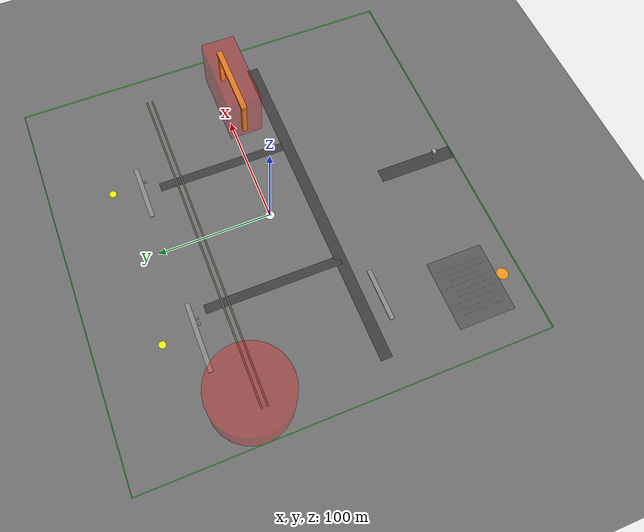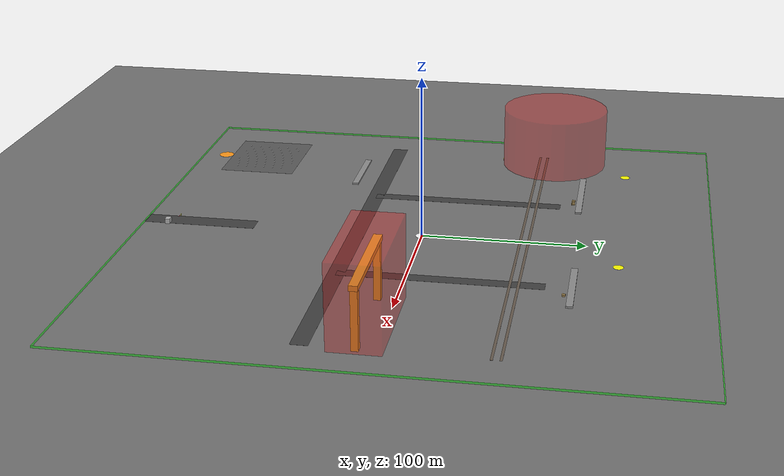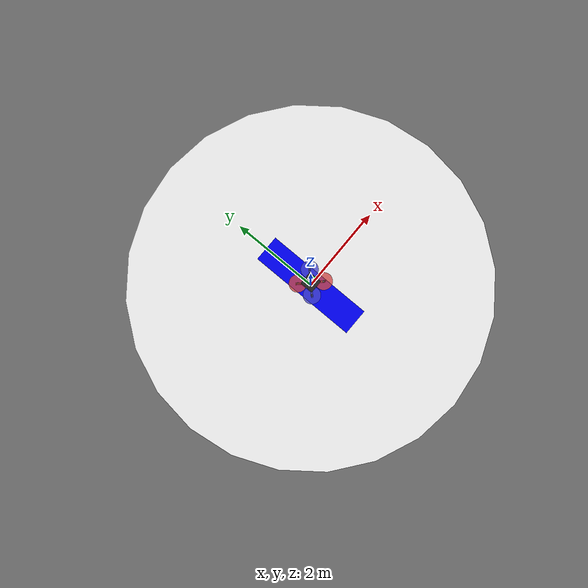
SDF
<sdf version="1.9">
 <world name="flyby_port_warehouse">
  <physics name="training_physics" type="ode">
   <max_step_size>0.001</max_step_size>
   <real_time_factor>1.0</real_time_factor>
   <real_time_update_rate>1000</real_time_update_rate>
   <ode>
    <solver><type>quick</type><iters>50</iters><sor>1.3</sor></solver>
    <constraints><cfm>0.0</cfm><erp>0.2</erp></constraints>
   </ode>
  </physics>
  <plugin filename="gz-sim-physics-system" name="gz::sim::systems::Physics"/>
  <plugin filename="gz-sim-sensors-system" name="gz::sim::systems::Sensors">
   <render_engine>ogre2</render_engine>
  </plugin>
  <plugin filename="gz-sim-scene-broadcaster-system" name="gz::sim::systems::SceneBroadcaster"/>
  <plugin filename="gz-sim-user-commands-system" name="gz::sim::systems::UserCommands"/>
  <plugin filename="gz-sim-imu-system" name="gz::sim::systems::Imu"/>
  <plugin filename="gz-sim-air-pressure-system" name="gz::sim::systems::AirPressure"/>
  <plugin filename="gz-sim-magnetometer-system" name="gz::sim::systems::Magnetometer"/>
  <plugin filename="gz-sim-navsat-system" name="gz::sim::systems::NavSat"/>
  <atmosphere type="adiabatic"><temperature>295.15</temperature><pressure>101325</pressure></atmosphere>
  <spherical_coordinates>
   <surface_model>EARTH_WGS84</surface_model>
   <world_frame_orientation>ENU</world_frame_orientation>
   <latitude_deg>33.7701</latitude_deg>
   <longitude_deg>-118.1937</longitude_deg>
   <elevation>5</elevation>
   <heading_deg>0</heading_deg>
  </spherical_coordinates>
  <light type="directional" name="sun">
   <pose>0 0 120 0 0 0</pose>
   <diffuse>0.7 0.7 0.7 1</diffuse>
   <specular>0.2 0.2 0.2 1</specular>
   <attenuation>
    <range>1000</range>
    <constant>0.9</constant>
    <linear>0.01</linear>
    <quadratic>0.001</quadratic>
   </attenuation>
   <direction>-0.4 0.3 -0.85</direction>
  </light>
  <light type="directional" name="ambient_fill">
   <cast_shadows>false</cast_shadows>
   <pose>0 0 120 0 0 0</pose>
   <diffuse>0.18 0.18 0.2 1</diffuse>
   <specular>0 0 0 1</specular>
   <direction>0 0 -1</direction>
  </light>
  <scene>
   <ambient>0.35 0.35 0.38 1</ambient>
   <background>0.65 0.68 0.75 1</background>
   <shadows>true</shadows>
  </scene>
  <model name="ground_plane">
   <static>true</static>
   <link name="link">
    <collision name="collision">
     <geometry><plane><normal>0 0 1</normal><size>450 450</size></plane></geometry>
     <surface><friction><ode><mu>100</mu><mu2>50</mu2></ode></friction></surface>
    </collision>
    <visual name="visual">
     <geometry><plane><normal>0 0 1</normal><size>450 450</size></plane></geometry>
     <material><ambient>0.4 0.4 0.4 1</ambient><diffuse>0.45 0.45 0.45 1</diffuse></material>
    </visual>
   </link>
  </model>
  <model name="geofence_north">
   <static>true</static>
   <pose>0 175 0.5 0 0 0</pose>
   <link name="link">
    <visual name="visual">
     <geometry><box><size>350 0.5 1</size></box></geometry>
     <material><ambient>0 1 0 0.5</ambient><diffuse>0 1 0 0.5</diffuse></material>
    </visual>
   </link>
  </model>
  <model name="geofence_south">
   <static>true</static>
   <pose>0 -175 0.5 0 0 0</pose>
   <link name="link">
    <visual name="visual">
     <geometry><box><size>350 0.5 1</size></box></geometry>
     <material><ambient>0 1 0 0.5</ambient><diffuse>0 1 0 0.5</diffuse></material>
    </visual>
   </link>
  </model>
  <model name="geofence_east">
   <static>true</static>
   <pose>175 0 0.5 0 0 0</pose>
   <link name="link">
    <visual name="visual">
     <geometry><box><size>0.5 350 1</size></box></geometry>
     <material><ambient>0 1 0 0.5</ambient><diffuse>0 1 0 0.5</diffuse></material>
    </visual>
   </link>
  </model>
  <model name="geofence_west">
   <static>true</static>
   <pose>-175 0 0.5 0 0 0</pose>
   <link name="link">
    <visual name="visual">
     <geometry><box><size>0.5 350 1</size></box></geometry>
     <material><ambient>0 1 0 0.5</ambient><diffuse>0 1 0 0.5</diffuse></material>
    </visual>
   </link>
  </model>
  <model name="main_entrance_road">
   <static>true</static>
   <pose>0 -140 0.02 0 0 0</pose>
   <link name="link">
    <visual name="visual">
     <geometry><box><size>12 70 0.04</size></box></geometry>
     <material><ambient>0.2 0.2 0.2 1</ambient><diffuse>0.25 0.25 0.25 1</diffuse></material>
    </visual>
   </link>
  </model>
  <model name="internal_road_ew">
   <static>true</static>
   <pose>0 -40 0.02 0 0 0</pose>
   <link name="link">
    <visual name="visual">
     <geometry><box><size>300 10 0.04</size></box></geometry>
     <material><ambient>0.2 0.2 0.2 1</ambient><diffuse>0.25 0.25 0.25 1</diffuse></material>
    </visual>
   </link>
  </model>
  <model name="internal_road_ns_1">
   <static>true</static>
   <pose>-60 20 0.02 0 0 0</pose>
   <link name="link">
    <visual name="visual">
     <geometry><box><size>8 120 0.04</size></box></geometry>
     <material><ambient>0.2 0.2 0.2 1</ambient><diffuse>0.25 0.25 0.25 1</diffuse></material>
    </visual>
   </link>
  </model>
  <model name="internal_road_ns_2">
   <static>true</static>
   <pose>60 20 0.02 0 0 0</pose>
   <link name="link">
    <visual name="visual">
     <geometry><box><size>8 120 0.04</size></box></geometry>
     <material><ambient>0.2 0.2 0.2 1</ambient><diffuse>0.25 0.25 0.25 1</diffuse></material>
    </visual>
   </link>
  </model>
  <model name="rail_track_1">
   <static>true</static>
   <pose>0 60 0.03 0 0 0</pose>
   <link name="link">
    <visual name="visual">
     <geometry><box><size>300 1.5 0.06</size></box></geometry>
     <material><ambient>0.3 0.25 0.2 1</ambient><diffuse>0.4 0.35 0.3 1</diffuse></material>
    </visual>
   </link>
  </model>
  <model name="rail_track_2">
   <static>true</static>
   <pose>0 65 0.03 0 0 0</pose>
   <link name="link">
    <visual name="visual">
     <geometry><box><size>300 1.5 0.06</size></box></geometry>
     <material><ambient>0.3 0.25 0.2 1</ambient><diffuse>0.4 0.35 0.3 1</diffuse></material>
    </visual>
   </link>
  </model>
  <model name="security_booth">
   <static>true</static>
   <pose>5 -160 1.5 0 0 0</pose>
   <link name="link">
    <collision name="collision"><geometry><box><size>4 3 3</size></box></geometry></collision>
    <visual name="visual">
     <geometry><box><size>4 3 3</size></box></geometry>
     <material><ambient>0.6 0.6 0.6 1</ambient><diffuse>0.7 0.7 0.7 1</diffuse></material>
    </visual>
   </link>
  </model>
  <model name="gate_barrier">
   <static>true</static>
   <pose>-5 -155 1 0 0 0</pose>
   <link name="link">
    <visual name="post">
     <geometry><cylinder><radius>0.1</radius><length>2</length></cylinder></geometry>
     <material><ambient>0.8 0.8 0 1</ambient><diffuse>0.9 0.9 0.1 1</diffuse></material>
    </visual>
    <visual name="arm">
     <pose>2.5 0 0.9 0 1.57 0</pose>
     <geometry><cylinder><radius>0.05</radius><length>5</length></cylinder></geometry>
     <material><ambient>1 0 0 1</ambient><diffuse>1 0.2 0.2 1</diffuse></material>
    </visual>
   </link>
  </model>
  <model name="parking_lot">
   <static>true</static>
   <pose>-120 -130 0.01 0 0 0</pose>
   <link name="link">
    <visual name="visual">
     <geometry><box><size>60 50 0.02</size></box></geometry>
     <material><ambient>0.3 0.3 0.3 1</ambient><diffuse>0.35 0.35 0.35 1</diffuse></material>
    </visual>
   </link>
  </model>
  <model name="parking_lines">
   <static>true</static>
   <pose>-120 -130 0.02 0 0 0</pose>
   <link name="link">
    <visual name="line1">
     <pose>-20 0 0 0 0 0</pose>
     <geometry><box><size>0.1 40 0.01</size></box></geometry>
     <material><ambient>1 1 1 1</ambient><diffuse>1 1 1 1</diffuse></material>
    </visual>
    <visual name="line2">
     <pose>-15 0 0 0 0 0</pose>
     <geometry><box><size>0.1 40 0.01</size></box></geometry>
     <material><ambient>1 1 1 1</ambient><diffuse>1 1 1 1</diffuse></material>
    </visual>
    <visual name="line3">
     <pose>-10 0 0 0 0 0</pose>
     <geometry><box><size>0.1 40 0.01</size></box></geometry>
     <material><ambient>1 1 1 1</ambient><diffuse>1 1 1 1</diffuse></material>
    </visual>
    <visual name="line4">
     <pose>-5 0 0 0 0 0</pose>
     <geometry><box><size>0.1 40 0.01</size></box></geometry>
     <material><ambient>1 1 1 1</ambient><diffuse>1 1 1 1</diffuse></material>
    </visual>
    <visual name="line5">
     <geometry><box><size>0.1 40 0.01</size></box></geometry>
     <material><ambient>1 1 1 1</ambient><diffuse>1 1 1 1</diffuse></material>
    </visual>
    <visual name="line6">
     <pose>5 0 0 0 0 0</pose>
     <geometry><box><size>0.1 40 0.01</size></box></geometry>
     <material><ambient>1 1 1 1</ambient><diffuse>1 1 1 1</diffuse></material>
    </visual>
    <visual name="line7">
     <pose>10 0 0 0 0 0</pose>
     <geometry><box><size>0.1 40 0.01</size></box></geometry>
     <material><ambient>1 1 1 1</ambient><diffuse>1 1 1 1</diffuse></material>
    </visual>
    <visual name="line8">
     <pose>15 0 0 0 0 0</pose>
     <geometry><box><size>0.1 40 0.01</size></box></geometry>
     <material><ambient>1 1 1 1</ambient><diffuse>1 1 1 1</diffuse></material>
    </visual>
    <visual name="line9">
     <pose>20 0 0 0 0 0</pose>
     <geometry><box><size>0.1 40 0.01</size></box></geometry>
     <material><ambient>1 1 1 1</ambient><diffuse>1 1 1 1</diffuse></material>
    </visual>
   </link>
  </model>
  <model name="warehouse_a_collision">
   <static>true</static>
   <pose>-80 120 7.5 0 0 0</pose>
   <link name="link">
    <collision name="collision"><geometry><box><size>80 50 15</size></box></geometry></collision>
   </link>
  </model>
  <model name="dock_a">
   <static>true</static>
   <pose>-80 92 0.6 0 0 0</pose>
   <link name="link">
    <collision name="collision"><geometry><box><size>60 4 1.2</size></box></geometry></collision>
    <visual name="visual">
     <geometry><box><size>60 4 1.2</size></box></geometry>
     <material><ambient>0.5 0.5 0.5 1</ambient><diffuse>0.55 0.55 0.55 1</diffuse></material>
    </visual>
   </link>
  </model>
  <model name="warehouse_b_collision">
   <static>true</static>
   <pose>60 120 7.5 0 0 0</pose>
   <link name="link">
    <collision name="collision"><geometry><box><size>70 45 15</size></box></geometry></collision>
   </link>
  </model>
  <model name="dock_b">
   <static>true</static>
   <pose>60 95 0.6 0 0 0</pose>
   <link name="link">
    <collision name="collision"><geometry><box><size>50 4 1.2</size></box></geometry></collision>
    <visual name="visual">
     <geometry><box><size>50 4 1.2</size></box></geometry>
     <material><ambient>0.5 0.5 0.5 1</ambient><diffuse>0.55 0.55 0.55 1</diffuse></material>
    </visual>
   </link>
  </model>
  <model name="warehouse_c_collision">
   <static>true</static>
   <pose>-100 -80 6 0 0 0</pose>
   <link name="link">
    <collision name="collision"><geometry><box><size>60 40 12</size></box></geometry></collision>
   </link>
  </model>
  <model name="dock_c">
   <static>true</static>
   <pose>-100 -58 0.6 0 0 0</pose>
   <link name="link">
    <collision name="collision"><geometry><box><size>45 4 1.2</size></box></geometry></collision>
    <visual name="visual">
     <geometry><box><size>45 4 1.2</size></box></geometry>
     <material><ambient>0.5 0.5 0.5 1</ambient><diffuse>0.55 0.55 0.55 1</diffuse></material>
    </visual>
   </link>
  </model>
  <model name="office_building_collision">
   <static>true</static>
   <pose>130 120 10 0 0 0</pose>
   <link name="link">
    <collision name="collision"><geometry><box><size>30 25 20</size></box></geometry></collision>
   </link>
  </model>
  <model name="container_yard_collision">
   <static>true</static>
   <pose>120 4 4 0 0 0</pose>
   <link name="link">
    <collision name="collision"><geometry><box><size>60 12 8</size></box></geometry></collision>
   </link>
  </model>
  <model name="gantry_crane_left_leg">
   <static>true</static>
   <pose>90 -10 17.5 0 0 0</pose>
   <link name="link">
    <collision name="collision"><geometry><box><size>4 4 35</size></box></geometry></collision>
    <visual name="visual">
     <geometry><box><size>4 4 35</size></box></geometry>
     <material><ambient>0.8 0.6 0.1 1</ambient><diffuse>0.9 0.7 0.2 1</diffuse></material>
    </visual>
   </link>
  </model>
  <model name="gantry_crane_right_leg">
   <static>true</static>
   <pose>150 -10 17.5 0 0 0</pose>
   <link name="link">
    <collision name="collision"><geometry><box><size>4 4 35</size></box></geometry></collision>
    <visual name="visual">
     <geometry><box><size>4 4 35</size></box></geometry>
     <material><ambient>0.8 0.6 0.1 1</ambient><diffuse>0.9 0.7 0.2 1</diffuse></material>
    </visual>
   </link>
  </model>
  <model name="gantry_crane_beam">
   <static>true</static>
   <pose>120 -10 36 0 0 0</pose>
   <link name="link">
    <collision name="collision"><geometry><box><size>66 5 3</size></box></geometry></collision>
    <visual name="visual">
     <geometry><box><size>66 5 3</size></box></geometry>
     <material><ambient>0.8 0.6 0.1 1</ambient><diffuse>0.9 0.7 0.2 1</diffuse></material>
    </visual>
   </link>
  </model>
  <model name="gantry_crane_trolley">
   <static>true</static>
   <pose>120 -10 34 0 0 0</pose>
   <link name="link">
    <collision name="collision"><geometry><box><size>8 4 2</size></box></geometry></collision>
    <visual name="visual">
     <geometry><box><size>8 4 2</size></box></geometry>
     <material><ambient>0.7 0.5 0.1 1</ambient><diffuse>0.8 0.6 0.15 1</diffuse></material>
    </visual>
   </link>
  </model>
  <model name="hazmat_storage_collision">
   <static>true</static>
   <pose>-140 80 5 0 0 0</pose>
   <link name="link">
    <collision name="collision"><geometry><box><size>40 30 10</size></box></geometry></collision>
   </link>
  </model>
  <model name="storage_tank_1_collision">
   <static>true</static>
   <pose>-150 50 5 0 0 0</pose>
   <link name="link">
    <collision name="collision">
     <geometry><cylinder><radius>5</radius><length>10</length></cylinder></geometry>
    </collision>
   </link>
  </model>
  <model name="storage_tank_2_collision">
   <static>true</static>
   <pose>-135 50 5 0 0 0</pose>
   <link name="link">
    <collision name="collision">
     <geometry><cylinder><radius>5</radius><length>10</length></cylinder></geometry>
    </collision>
   </link>
  </model>
  <model name="pallet_stack_a1">
   <static>true</static>
   <pose>-70 88 0.5 0 0 0</pose>
   <link name="link">
    <collision name="collision"><geometry><box><size>2 2 1</size></box></geometry></collision>
    <visual name="visual">
     <geometry><box><size>2 2 1</size></box></geometry>
     <material><ambient>0.5 0.4 0.2 1</ambient><diffuse>0.6 0.5 0.3 1</diffuse></material>
    </visual>
   </link>
  </model>
  <model name="pallet_stack_a2">
   <static>true</static>
   <pose>-65 88 0.5 0 0 0.1</pose>
   <link name="link">
    <collision name="collision"><geometry><box><size>2 2 1</size></box></geometry></collision>
    <visual name="visual">
     <geometry><box><size>2 2 1</size></box></geometry>
     <material><ambient>0.5 0.4 0.2 1</ambient><diffuse>0.6 0.5 0.3 1</diffuse></material>
    </visual>
   </link>
  </model>
  <model name="pallet_stack_b1">
   <static>true</static>
   <pose>70 91 0.5 0 0 -0.1</pose>
   <link name="link">
    <collision name="collision"><geometry><box><size>2 2 1</size></box></geometry></collision>
    <visual name="visual">
     <geometry><box><size>2 2 1</size></box></geometry>
     <material><ambient>0.5 0.4 0.2 1</ambient><diffuse>0.6 0.5 0.3 1</diffuse></material>
    </visual>
   </link>
  </model>
  <model name="nfz_hazmat_storage">
   <static>true</static>
   <pose>-140 70 20 0 0 0</pose>
   <link name="link">
    <visual name="visual">
     <geometry><cylinder><radius>35</radius><length>40</length></cylinder></geometry>
     <material><ambient>1 0 0 0.3</ambient><diffuse>1 0 0 0.3</diffuse></material>
    </visual>
   </link>
  </model>
  <model name="hazard_sign_1">
   <static>true</static>
   <pose>-105 70 1.5 0 0 0</pose>
   <link name="link">
    <visual name="post">
     <pose>0 0 -0.75 0 0 0</pose>
     <geometry><cylinder><radius>0.05</radius><length>1.5</length></cylinder></geometry>
     <material><ambient>0.3 0.3 0.3 1</ambient><diffuse>0.4 0.4 0.4 1</diffuse></material>
    </visual>
    <visual name="sign">
     <geometry><box><size>0.6 0.05 0.4</size></box></geometry>
     <material><ambient>1 0.8 0 1</ambient><diffuse>1 0.9 0.1 1</diffuse></material>
    </visual>
   </link>
  </model>
  <model name="hazard_sign_2">
   <static>true</static>
   <pose>-140 35 1.5 0 0 0</pose>
   <link name="link">
    <visual name="post">
     <pose>0 0 -0.75 0 0 0</pose>
     <geometry><cylinder><radius>0.05</radius><length>1.5</length></cylinder></geometry>
     <material><ambient>0.3 0.3 0.3 1</ambient><diffuse>0.4 0.4 0.4 1</diffuse></material>
    </visual>
    <visual name="sign">
     <geometry><box><size>0.6 0.05 0.4</size></box></geometry>
     <material><ambient>1 0.8 0 1</ambient><diffuse>1 0.9 0.1 1</diffuse></material>
    </visual>
   </link>
  </model>
  <model name="nfz_crane_zone">
   <static>true</static>
   <pose>120 -10 25 0 0 0</pose>
   <link name="link">
    <visual name="visual">
     <geometry><box><size>70 30 50</size></box></geometry>
     <material><ambient>1 0 0 0.3</ambient><diffuse>1 0 0 0.3</diffuse></material>
    </visual>
   </link>
  </model>
  <model name="landing_zone_primary">
   <static>true</static>
   <pose>0 0 0.01 0 0 0</pose>
   <link name="link">
    <visual name="visual">
     <geometry><cylinder><radius>4</radius><length>0.02</length></cylinder></geometry>
     <material><ambient>1 1 1 1</ambient><diffuse>1 1 1 1</diffuse></material>
    </visual>
    <visual name="H_mark">
     <pose>0 0 0.01 0 0 0</pose>
     <geometry><box><size>0.6 2.5 0.01</size></box></geometry>
     <material><ambient>0 0 1 1</ambient><diffuse>0 0 1 1</diffuse></material>
    </visual>
   </link>
  </model>
  <model name="landing_zone_warehouse_a">
   <static>true</static>
   <pose>-80 120 15.01 0 0 0</pose>
   <link name="link">
    <visual name="visual">
     <geometry><cylinder><radius>3</radius><length>0.02</length></cylinder></geometry>
     <material><ambient>1 1 0 1</ambient><diffuse>1 1 0 1</diffuse></material>
    </visual>
   </link>
  </model>
  <model name="landing_zone_warehouse_b">
   <static>true</static>
   <pose>60 120 15.01 0 0 0</pose>
   <link name="link">
    <visual name="visual">
     <geometry><cylinder><radius>3</radius><length>0.02</length></cylinder></geometry>
     <material><ambient>1 1 0 1</ambient><diffuse>1 1 0 1</diffuse></material>
    </visual>
   </link>
  </model>
  <model name="landing_zone_emergency">
   <static>true</static>
   <pose>-120 -160 0.01 0 0 0</pose>
   <link name="link">
    <visual name="visual">
     <geometry><cylinder><radius>5</radius><length>0.02</length></cylinder></geometry>
     <material><ambient>1 0.5 0 1</ambient><diffuse>1 0.6 0.1 1</diffuse></material>
    </visual>
   </link>
  </model>
  <include>
   <uri>model://f11_isr_camera</uri>
   <name>f11_isr</name>
   <pose>0 0 0.5 0 0 0</pose>
   <plugin filename="gz-sim-joint-position-controller-system" name="gz::sim::systems::JointPositionController">
    <joint_name>gimbal_yaw_joint</joint_name>
    <topic>/f11_isr/gimbal/yaw</topic>
    <p_gain>10.0</p_gain>
    <i_gain>0.1</i_gain>
    <d_gain>0.5</d_gain>
    <i_max>1.0</i_max>
    <i_min>-1.0</i_min>
    <cmd_max>10.0</cmd_max>
    <cmd_min>-10.0</cmd_min>
   </plugin>
   <plugin filename="gz-sim-joint-position-controller-system" name="gz::sim::systems::JointPositionController">
    <joint_name>gimbal_pitch_joint</joint_name>
    <topic>/f11_isr/gimbal/pitch</topic>
    <p_gain>10.0</p_gain>
    <i_gain>0.1</i_gain>
    <d_gain>0.5</d_gain>
    <i_max>1.0</i_max>
    <i_min>-1.0</i_min>
    <cmd_max>10.0</cmd_max>
    <cmd_min>-10.0</cmd_min>
   </plugin>
   <plugin filename="gz-sim-joint-position-controller-system" name="gz::sim::systems::JointPositionController">
    <joint_name>camera_joint</joint_name>
    <topic>/f11_isr/gimbal/roll</topic>
    <p_gain>10.0</p_gain>
    <i_gain>0.1</i_gain>
    <d_gain>0.5</d_gain>
    <i_max>1.0</i_max>
    <i_min>-1.0</i_min>
    <cmd_max>10.0</cmd_max>
    <cmd_min>-10.0</cmd_min>
   </plugin>
  </include>
 </world>
</sdf>

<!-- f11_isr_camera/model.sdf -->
<sdf version="1.9">
  <model name="f11_isr_camera">
    <pose>0 0 0.25 0 0 0</pose>

    <!-- F-11 Base Link (Main Body) -->
    <link name="base_link">
      <inertial>
        <!-- Total mass: 4.5 kg base + 1.8 kg payload = 6.3 kg -->
        <mass>6.3</mass>
        <!-- CoG shifted down due to bottom-mounted payload -->
        <pose>0 0 -0.05 0 0 0</pose>
        <inertia>
          <!-- Adjusted inertia for heavier payload -->
          <ixx>0.115</ixx>
          <ixy>0</ixy>
          <ixz>0</ixz>
          <iyy>0.115</iyy>
          <iyz>0</iyz>
          <izz>0.175</izz>
        </inertia>
      </inertial>

      <!-- Main body visual - central frame -->
      <visual name="body_visual">
        <geometry>
          <box>
            <size>0.30 0.30 0.12</size>
          </box>
        </geometry>
        <material>
          <ambient>0.1 0.1 0.1 1</ambient>
          <diffuse>0.15 0.15 0.15 1</diffuse>
          <specular>0.3 0.3 0.3 1</specular>
        </material>
      </visual>

      <!-- Battery bay visual -->
      <visual name="battery_visual">
        <pose>0 0 -0.04 0 0 0</pose>
        <geometry>
          <box>
            <size>0.18 0.12 0.06</size>
          </box>
        </geometry>
        <material>
          <ambient>0.2 0.2 0.25 1</ambient>
          <diffuse>0.25 0.25 0.3 1</diffuse>
        </material>
      </visual>

      <!-- Jetson Orin NX housing visual -->
      <visual name="compute_visual">
        <pose>0 0 0.08 0 0 0</pose>
        <geometry>
          <box>
            <size>0.10 0.08 0.04</size>
          </box>
        </geometry>
        <material>
          <ambient>0.0 0.4 0.0 1</ambient>
          <diffuse>0.0 0.5 0.0 1</diffuse>
        </material>
      </visual>

      <!-- Front marker for orientation (green) -->
      <visual name="front_marker">
        <pose>0.12 0 0.06 0 0 0</pose>
        <geometry>
          <sphere>
            <radius>0.03</radius>
          </sphere>
        </geometry>
        <material>
          <ambient>0 1 0 1</ambient>
          <diffuse>0 1 0 1</diffuse>
        </material>
      </visual>

      <!-- Arms visual representation -->
      <visual name="arm_fr_visual">
        <pose>0.1375 -0.1375 0 0 0 -0.785398</pose>
        <geometry>
          <box>
            <size>0.25 0.04 0.03</size>
          </box>
        </geometry>
        <material>
          <ambient>0.15 0.15 0.15 1</ambient>
          <diffuse>0.2 0.2 0.2 1</diffuse>
        </material>
      </visual>

      <visual name="arm_fl_visual">
        <pose>0.1375 0.1375 0 0 0 0.785398</pose>
        <geometry>
          <box>
            <size>0.25 0.04 0.03</size>
          </box>
        </geometry>
        <material>
          <ambient>0.15 0.15 0.15 1</ambient>
          <diffuse>0.2 0.2 0.2 1</diffuse>
        </material>
      </visual>

      <visual name="arm_br_visual">
        <pose>-0.1375 -0.1375 0 0 0 0.785398</pose>
        <geometry>
          <box>
            <size>0.25 0.04 0.03</size>
          </box>
        </geometry>
        <material>
          <ambient>0.15 0.15 0.15 1</ambient>
          <diffuse>0.2 0.2 0.2 1</diffuse>
        </material>
      </visual>

      <visual name="arm_bl_visual">
        <pose>-0.1375 0.1375 0 0 0 -0.785398</pose>
        <geometry>
          <box>
            <size>0.25 0.04 0.03</size>
          </box>
        </geometry>
        <material>
          <ambient>0.15 0.15 0.15 1</ambient>
          <diffuse>0.2 0.2 0.2 1</diffuse>
        </material>
      </visual>

      <collision name="body_collision">
        <geometry>
          <box>
            <size>0.55 0.55 0.15</size>
          </box>
        </geometry>
      </collision>
    </link>

    <!-- Rotor 0 (Front Right - CW) -->
    <link name="rotor_0">
      <pose>0.195 -0.195 0.04 0 0 0</pose>
      <inertial>
        <mass>0.025</mass>
        <inertia>
          <ixx>1.0e-05</ixx>
          <ixy>0</ixy>
          <ixz>0</ixz>
          <iyy>5.0e-04</iyy>
          <iyz>0</iyz>
          <izz>5.0e-04</izz>
        </inertia>
      </inertial>
      <visual name="rotor_visual">
        <geometry>
          <cylinder>
            <radius>0.19</radius>
            <length>0.01</length>
          </cylinder>
        </geometry>
        <material>
          <ambient>0.8 0.2 0.2 0.8</ambient>
          <diffuse>0.9 0.3 0.3 0.8</diffuse>
        </material>
      </visual>
      <visual name="motor_visual">
        <pose>0 0 -0.015 0 0 0</pose>
        <geometry>
          <cylinder>
            <radius>0.025</radius>
            <length>0.04</length>
          </cylinder>
        </geometry>
        <material>
          <ambient>0.3 0.3 0.3 1</ambient>
          <diffuse>0.4 0.4 0.4 1</diffuse>
        </material>
      </visual>
    </link>

    <!-- Rotor 1 (Back Left - CW) -->
    <link name="rotor_1">
      <pose>-0.195 0.195 0.04 0 0 0</pose>
      <inertial>
        <mass>0.025</mass>
        <inertia>
          <ixx>1.0e-05</ixx>
          <ixy>0</ixy>
          <ixz>0</ixz>
          <iyy>5.0e-04</iyy>
          <iyz>0</iyz>
          <izz>5.0e-04</izz>
        </inertia>
      </inertial>
      <visual name="rotor_visual">
        <geometry>
          <cylinder>
            <radius>0.19</radius>
            <length>0.01</length>
          </cylinder>
        </geometry>
        <material>
          <ambient>0.8 0.2 0.2 0.8</ambient>
          <diffuse>0.9 0.3 0.3 0.8</diffuse>
        </material>
      </visual>
      <visual name="motor_visual">
        <pose>0 0 -0.015 0 0 0</pose>
        <geometry>
          <cylinder>
            <radius>0.025</radius>
            <length>0.04</length>
          </cylinder>
        </geometry>
        <material>
          <ambient>0.3 0.3 0.3 1</ambient>
          <diffuse>0.4 0.4 0.4 1</diffuse>
        </material>
      </visual>
    </link>

    <!-- Rotor 2 (Front Left - CCW) -->
    <link name="rotor_2">
      <pose>0.195 0.195 0.04 0 0 0</pose>
      <inertial>
        <mass>0.025</mass>
        <inertia>
          <ixx>1.0e-05</ixx>
          <ixy>0</ixy>
          <ixz>0</ixz>
          <iyy>5.0e-04</iyy>
          <iyz>0</iyz>
          <izz>5.0e-04</izz>
        </inertia>
      </inertial>
      <visual name="rotor_visual">
        <geometry>
          <cylinder>
            <radius>0.19</radius>
            <length>0.01</length>
          </cylinder>
        </geometry>
        <material>
          <ambient>0.2 0.2 0.8 0.8</ambient>
          <diffuse>0.3 0.3 0.9 0.8</diffuse>
        </material>
      </visual>
      <visual name="motor_visual">
        <pose>0 0 -0.015 0 0 0</pose>
        <geometry>
          <cylinder>
            <radius>0.025</radius>
            <length>0.04</length>
          </cylinder>
        </geometry>
        <material>
          <ambient>0.3 0.3 0.3 1</ambient>
          <diffuse>0.4 0.4 0.4 1</diffuse>
        </material>
      </visual>
    </link>

    <!-- Rotor 3 (Back Right - CCW) -->
    <link name="rotor_3">
      <pose>-0.195 -0.195 0.04 0 0 0</pose>
      <inertial>
        <mass>0.025</mass>
        <inertia>
          <ixx>1.0e-05</ixx>
          <ixy>0</ixy>
          <ixz>0</ixz>
          <iyy>5.0e-04</iyy>
          <iyz>0</iyz>
          <izz>5.0e-04</izz>
        </inertia>
      </inertial>
      <visual name="rotor_visual">
        <geometry>
          <cylinder>
            <radius>0.19</radius>
            <length>0.01</length>
          </cylinder>
        </geometry>
        <material>
          <ambient>0.2 0.2 0.8 0.8</ambient>
          <diffuse>0.3 0.3 0.9 0.8</diffuse>
        </material>
      </visual>
      <visual name="motor_visual">
        <pose>0 0 -0.015 0 0 0</pose>
        <geometry>
          <cylinder>
            <radius>0.025</radius>
            <length>0.04</length>
          </cylinder>
        </geometry>
        <material>
          <ambient>0.3 0.3 0.3 1</ambient>
          <diffuse>0.4 0.4 0.4 1</diffuse>
        </material>
      </visual>
    </link>

    <!-- Gimbal Mount Link -->
    <link name="gimbal_mount_link">
      <pose>0 0 -0.10 0 0 0</pose>
      <inertial>
        <mass>0.2</mass>
        <inertia>
          <ixx>0.0005</ixx>
          <ixy>0</ixy>
          <ixz>0</ixz>
          <iyy>0.0005</iyy>
          <iyz>0</iyz>
          <izz>0.0003</izz>
        </inertia>
      </inertial>
      <visual name="mount_visual">
        <geometry>
          <box>
            <size>0.08 0.08 0.03</size>
          </box>
        </geometry>
        <material>
          <ambient>0.3 0.3 0.3 1</ambient>
          <diffuse>0.4 0.4 0.4 1</diffuse>
        </material>
      </visual>
    </link>

    <!-- Gimbal Yaw Link -->
    <link name="gimbal_yaw_link">
      <pose>0 0 -0.13 0 0 0</pose>
      <inertial>
        <mass>0.3</mass>
        <inertia>
          <ixx>0.0008</ixx>
          <ixy>0</ixy>
          <ixz>0</ixz>
          <iyy>0.0008</iyy>
          <iyz>0</iyz>
          <izz>0.0005</izz>
        </inertia>
      </inertial>
      <visual name="yaw_visual">
        <geometry>
          <cylinder>
            <radius>0.04</radius>
            <length>0.05</length>
          </cylinder>
        </geometry>
        <material>
          <ambient>0.25 0.25 0.25 1</ambient>
          <diffuse>0.35 0.35 0.35 1</diffuse>
        </material>
      </visual>
    </link>

    <!-- Gimbal Pitch Link -->
    <link name="gimbal_pitch_link">
      <pose>0 0 -0.18 0 0 0</pose>
      <inertial>
        <mass>0.25</mass>
        <inertia>
          <ixx>0.0006</ixx>
          <ixy>0</ixy>
          <ixz>0</ixz>
          <iyy>0.0006</iyy>
          <iyz>0</iyz>
          <izz>0.0004</izz>
        </inertia>
      </inertial>
      <visual name="pitch_visual">
        <geometry>
          <box>
            <size>0.06 0.12 0.06</size>
          </box>
        </geometry>
        <material>
          <ambient>0.2 0.2 0.2 1</ambient>
          <diffuse>0.3 0.3 0.3 1</diffuse>
        </material>
      </visual>
    </link>

    <!-- Camera Link (Sony A7R) -->
    <link name="camera_link">
      <pose>0 0 -0.25 0 0.35 0</pose>
      <inertial>
        <mass>0.85</mass>
        <inertia>
          <ixx>0.002</ixx>
          <ixy>0</ixy>
          <ixz>0</ixz>
          <iyy>0.0015</iyy>
          <iyz>0</iyz>
          <izz>0.001</izz>
        </inertia>
      </inertial>
      <!-- Camera body -->
      <visual name="camera_body_visual">
        <geometry>
          <box>
            <size>0.127 0.094 0.048</size>
          </box>
        </geometry>
        <material>
          <ambient>0.1 0.1 0.1 1</ambient>
          <diffuse>0.15 0.15 0.15 1</diffuse>
        </material>
      </visual>
      <!-- Lens -->
      <visual name="lens_visual">
        <pose>0.06 0 0 0 1.5708 0</pose>
        <geometry>
          <cylinder>
            <radius>0.035</radius>
            <length>0.08</length>
          </cylinder>
        </geometry>
        <material>
          <ambient>0.05 0.05 0.05 1</ambient>
          <diffuse>0.1 0.1 0.1 1</diffuse>
        </material>
      </visual>
      <!-- Camera Sensor -->
      <sensor name="isr_camera" type="camera">
        <pose>0.10 0 0 0 0 0</pose>
        <camera>
          <horizontal_fov>1.047</horizontal_fov>
          <image>
            <width>1920</width>
            <height>1080</height>
            <format>R8G8B8</format>
          </image>
          <clip>
            <near>0.1</near>
            <far>1000</far>
          </clip>
          <noise>
            <type>gaussian</type>
            <mean>0</mean>
            <stddev>0.007</stddev>
          </noise>
        </camera>
        <always_on>1</always_on>
        <update_rate>30</update_rate>
        <visualize>true</visualize>
      </sensor>
    </link>

    <!-- Rotor joints -->
    <joint name="rotor_0_joint" type="revolute">
      <parent>base_link</parent>
      <child>rotor_0</child>
      <axis>
        <xyz>0 0 1</xyz>
        <limit>
          <lower>-1e16</lower>
          <upper>1e16</upper>
        </limit>
        <dynamics>
          <damping>0.004</damping>
        </dynamics>
      </axis>
    </joint>

    <joint name="rotor_1_joint" type="revolute">
      <parent>base_link</parent>
      <child>rotor_1</child>
      <axis>
        <xyz>0 0 1</xyz>
        <limit>
          <lower>-1e16</lower>
          <upper>1e16</upper>
        </limit>
        <dynamics>
          <damping>0.004</damping>
        </dynamics>
      </axis>
    </joint>

    <joint name="rotor_2_joint" type="revolute">
      <parent>base_link</parent>
      <child>rotor_2</child>
      <axis>
        <xyz>0 0 1</xyz>
        <limit>
          <lower>-1e16</lower>
          <upper>1e16</upper>
        </limit>
        <dynamics>
          <damping>0.004</damping>
        </dynamics>
      </axis>
    </joint>

    <joint name="rotor_3_joint" type="revolute">
      <parent>base_link</parent>
      <child>rotor_3</child>
      <axis>
        <xyz>0 0 1</xyz>
        <limit>
          <lower>-1e16</lower>
          <upper>1e16</upper>
        </limit>
        <dynamics>
          <damping>0.004</damping>
        </dynamics>
      </axis>
    </joint>

    <!-- Gimbal joints -->
    <joint name="gimbal_mount_joint" type="fixed">
      <parent>base_link</parent>
      <child>gimbal_mount_link</child>
    </joint>

    <joint name="gimbal_yaw_joint" type="revolute">
      <parent>gimbal_mount_link</parent>
      <child>gimbal_yaw_link</child>
      <axis>
        <xyz>0 0 1</xyz>
        <limit>
          <lower>-6.02</lower>
          <upper>6.02</upper>
        </limit>
        <dynamics>
          <damping>0.5</damping>
        </dynamics>
      </axis>
    </joint>

    <joint name="gimbal_pitch_joint" type="revolute">
      <parent>gimbal_yaw_link</parent>
      <child>gimbal_pitch_link</child>
      <axis>
        <xyz>0 1 0</xyz>
        <limit>
          <lower>-2.09</lower>
          <upper>2.09</upper>
        </limit>
        <dynamics>
          <damping>0.5</damping>
        </dynamics>
      </axis>
    </joint>

    <joint name="camera_joint" type="revolute">
      <parent>gimbal_pitch_link</parent>
      <child>camera_link</child>
      <axis>
        <xyz>1 0 0</xyz>
        <limit>
          <lower>-0.785</lower>
          <upper>0.785</upper>
        </limit>
        <dynamics>
          <damping>0.5</damping>
        </dynamics>
      </axis>
    </joint>

    <!-- IMU Sensor Link -->
    <link name="imu_link">
      <pose>0 0 0 0 0 0</pose>
      <inertial>
        <mass>0.015</mass>
        <inertia>
          <ixx>1e-05</ixx>
          <ixy>0</ixy>
          <ixz>0</ixz>
          <iyy>1e-05</iyy>
          <iyz>0</iyz>
          <izz>1e-05</izz>
        </inertia>
      </inertial>
      <sensor name="imu_sensor" type="imu">
        <always_on>1</always_on>
        <update_rate>250</update_rate>
        <imu>
          <angular_velocity>
            <x><noise type="gaussian"><mean>0</mean><stddev>0.009</stddev></noise></x>
            <y><noise type="gaussian"><mean>0</mean><stddev>0.009</stddev></noise></y>
            <z><noise type="gaussian"><mean>0</mean><stddev>0.009</stddev></noise></z>
          </angular_velocity>
          <linear_acceleration>
            <x><noise type="gaussian"><mean>0</mean><stddev>0.017</stddev></noise></x>
            <y><noise type="gaussian"><mean>0</mean><stddev>0.017</stddev></noise></y>
            <z><noise type="gaussian"><mean>0</mean><stddev>0.017</stddev></noise></z>
          </linear_acceleration>
        </imu>
      </sensor>
    </link>

    <joint name="imu_joint" type="fixed">
      <parent>base_link</parent>
      <child>imu_link</child>
    </joint>

    <!-- GPS Link -->
    <link name="gps_link">
      <pose>0 0 0.10 0 0 0</pose>
      <inertial>
        <mass>0.05</mass>
        <inertia>
          <ixx>1e-05</ixx>
          <ixy>0</ixy>
          <ixz>0</ixz>
          <iyy>1e-05</iyy>
          <iyz>0</iyz>
          <izz>1e-05</izz>
        </inertia>
      </inertial>
      <visual name="gps_visual">
        <geometry>
          <cylinder>
            <radius>0.03</radius>
            <length>0.015</length>
          </cylinder>
        </geometry>
        <material>
          <ambient>0.8 0.8 0.8 1</ambient>
          <diffuse>0.9 0.9 0.9 1</diffuse>
        </material>
      </visual>
      <sensor name="gps_sensor" type="navsat">
        <always_on>1</always_on>
        <update_rate>10</update_rate>
      </sensor>
    </link>

    <joint name="gps_joint" type="fixed">
      <parent>base_link</parent>
      <child>gps_link</child>
    </joint>

    <!-- Gimbal Yaw Position Controller -->
    <plugin filename="gz-sim-joint-position-controller-system"
            name="gz::sim::systems::JointPositionController">
      <joint_name>gimbal_yaw_joint</joint_name>
      <topic>/f11_isr/gimbal/yaw</topic>
      <p_gain>10.0</p_gain>
      <i_gain>0.1</i_gain>
      <d_gain>0.5</d_gain>
      <i_max>1.0</i_max>
      <i_min>-1.0</i_min>
      <cmd_max>10.0</cmd_max>
      <cmd_min>-10.0</cmd_min>
    </plugin>

    <!-- Gimbal Pitch Position Controller -->
    <plugin filename="gz-sim-joint-position-controller-system"
            name="gz::sim::systems::JointPositionController">
      <joint_name>gimbal_pitch_joint</joint_name>
      <topic>/f11_isr/gimbal/pitch</topic>
      <p_gain>10.0</p_gain>
      <i_gain>0.1</i_gain>
      <d_gain>0.5</d_gain>
      <i_max>1.0</i_max>
      <i_min>-1.0</i_min>
      <cmd_max>10.0</cmd_max>
      <cmd_min>-10.0</cmd_min>
    </plugin>

    <!-- Gimbal Roll (Camera) Position Controller -->
    <plugin filename="gz-sim-joint-position-controller-system"
            name="gz::sim::systems::JointPositionController">
      <joint_name>camera_joint</joint_name>
      <topic>/f11_isr/gimbal/roll</topic>
      <p_gain>10.0</p_gain>
      <i_gain>0.1</i_gain>
      <d_gain>0.5</d_gain>
      <i_max>1.0</i_max>
      <i_min>-1.0</i_min>
      <cmd_max>10.0</cmd_max>
      <cmd_min>-10.0</cmd_min>
    </plugin>

    <!-- ArduPilot Plugin -->
    <plugin filename="ArduPilotPlugin" name="ArduPilotPlugin">
      <fdm_addr>127.0.0.1</fdm_addr>
      <fdm_port_in>9002</fdm_port_in>
      <fdm_port_out>9003</fdm_port_out>

      <modelXYZToAirplaneXForwardZDown>0 0 0 3.141593 0 0</modelXYZToAirplaneXForwardZDown>
      <gazeboXYZToNED>0 0 0 3.141593 0 0</gazeboXYZToNED>
      <imuName>imu_link::imu_sensor</imuName>

      <!-- Motor 0: Front Right (CW) -->
      <control channel="0">
        <jointName>rotor_0_joint</jointName>
        <useForce>1</useForce>
        <multiplier>1400</multiplier>
        <offset>-0.5</offset>
        <servo_min>1000</servo_min>
        <servo_max>2000</servo_max>
        <type>VELOCITY</type>
        <p_gain>0.25</p_gain>
        <i_gain>0</i_gain>
        <d_gain>0</d_gain>
        <i_max>0</i_max>
        <i_min>0</i_min>
        <cmd_max>3.0</cmd_max>
        <cmd_min>-3.0</cmd_min>
      </control>

      <!-- Motor 1: Back Left (CW) -->
      <control channel="1">
        <jointName>rotor_1_joint</jointName>
        <useForce>1</useForce>
        <multiplier>1400</multiplier>
        <offset>-0.5</offset>
        <servo_min>1000</servo_min>
        <servo_max>2000</servo_max>
        <type>VELOCITY</type>
        <p_gain>0.25</p_gain>
        <i_gain>0</i_gain>
        <d_gain>0</d_gain>
        <i_max>0</i_max>
        <i_min>0</i_min>
        <cmd_max>3.0</cmd_max>
        <cmd_min>-3.0</cmd_min>
      </control>

      <!-- Motor 2: Front Left (CCW) -->
      <control channel="2">
        <jointName>rotor_2_joint</jointName>
        <useForce>1</useForce>
        <multiplier>1400</multiplier>
        <offset>-0.5</offset>
        <servo_min>1000</servo_min>
        <servo_max>2000</servo_max>
        <type>VELOCITY</type>
        <p_gain>0.25</p_gain>
        <i_gain>0</i_gain>
        <d_gain>0</d_gain>
        <i_max>0</i_max>
        <i_min>0</i_min>
        <cmd_max>3.0</cmd_max>
        <cmd_min>-3.0</cmd_min>
      </control>

      <!-- Motor 3: Back Right (CCW) -->
      <control channel="3">
        <jointName>rotor_3_joint</jointName>
        <useForce>1</useForce>
        <multiplier>1400</multiplier>
        <offset>-0.5</offset>
        <servo_min>1000</servo_min>
        <servo_max>2000</servo_max>
        <type>VELOCITY</type>
        <p_gain>0.25</p_gain>
        <i_gain>0</i_gain>
        <d_gain>0</d_gain>
        <i_max>0</i_max>
        <i_min>0</i_min>
        <cmd_max>3.0</cmd_max>
        <cmd_min>-3.0</cmd_min>
      </control>
    </plugin>

  </model>
</sdf>
